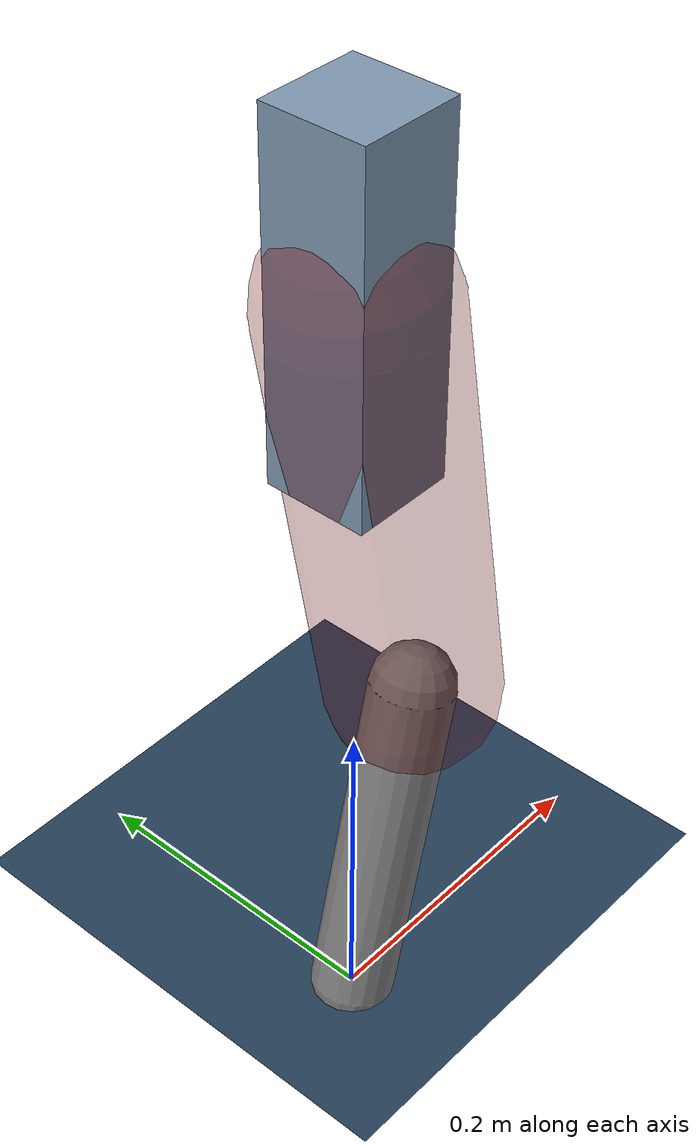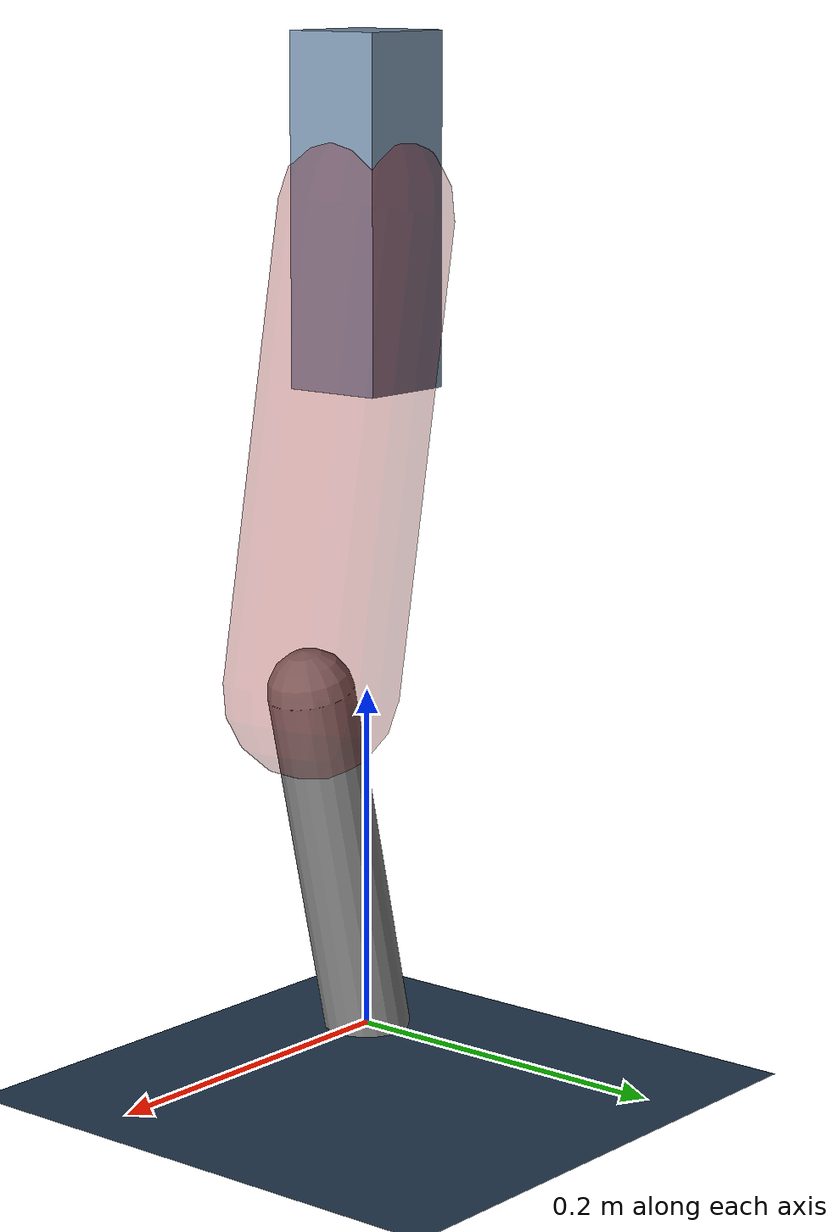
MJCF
<mujoco model="Hopper2D">
	<compiler inertiafromgeom="true" angle="radian" />
	<option timestep="0.001" integrator="implicit" cone="elliptic" solver="Newton" tolerance="1e-10" />

	<default>
		<geom contype="1" conaffinity="1" condim="3" friction="2 0.005 0.0001" solref="0.005 1" />
		<joint limited="true" damping="0.1" />
	</default>

	<asset>
		<texture name="skybox" type="skybox" builtin="gradient" rgb1=".4 .6 .8" rgb2="0 0 0" width="800" height="800" />
		<texture name="grid" type="2d" builtin="checker" rgb1=".1 .2 .3" rgb2=".2 .3 .4" width="300" height="300" mark="edge" markrgb=".2 .3 .4" />
		<material name="ground" texture="grid" texrepeat="1 1" texuniform="true" reflectance="0.1" />
		<material name="leg" rgba="0.5 0.6 0.7 1" />
	</asset>

	<worldbody>

		<geom name="floor" type="plane" size="5 5 0.25" material="ground" />

		<light directional="false" diffuse="0.8 0.8 0.8" specular="0.3 0.3 0.3" pos="0 0 2" dir="0 0 -1" />
		<light mode="targetbodycom" target="base" directional="false" diffuse="0.8 0.8 0.8" specular="0.3 0.3 0.3" pos="0 0 2" dir="0 0 -1" />

		<camera name="fixed" pos="0 -2 1" xyaxes="1 0 0 0 0 1" />
		<camera name="tracking" mode="trackcom" pos="0 -3 1" />

		<body name="root" pos="0 0 0.47571879901882963">
			<joint name="slide_x" type="slide" axis="1 0 0" range="-100 100" />
			<joint name="slide_z" type="slide" axis="0 0 1" range="0 10" />

			<body name="base" pos="0 0 0">
				<geom name="torso" type="box" size="0.03 0.03 0.1" mass="2.35" material="leg" />

				<body name="link1" pos="0 0 0" euler="0 1.3911322562704744 0">
					<joint type="hinge" axis="0 -1 0" pos="0 0 0" name="hinge1" limited="true" range="-3.14 3.14" stiffness="0" damping="0.1" />
					<geom name="thigh" type="capsule" fromto="0 0 0 0.2722497076950793 0 0" size="0.05" rgba="0.5 0 0 0.3" mass="0.9145742107767141" />

					<body name="link2" pos="0.2722497076950793 0 0" euler="0 0.4095900380820983 0">
						<joint type="hinge" axis="0 -1 0" pos="0 0 0" name="hinge2" limited="true" range="-3.14 3.14" stiffness="0" damping="0.1" />
						<geom name="shank" type="capsule" fromto="0 0 0 0.21346909132375033 0 0" size="0.025" mass="0.4122221821913753" />

					</body>
				</body>
			</body>
		</body>
	</worldbody>

	<actuator>
		<motor name="torque1" joint="hinge1" ctrlrange="-71.16111960913966 71.16111960913966" ctrllimited="true" gear="1" />
		<motor name="torque2" joint="hinge2" ctrlrange="-94.49874962833483 94.49874962833483" ctrllimited="true" gear="1" />
	</actuator>
</mujoco>
